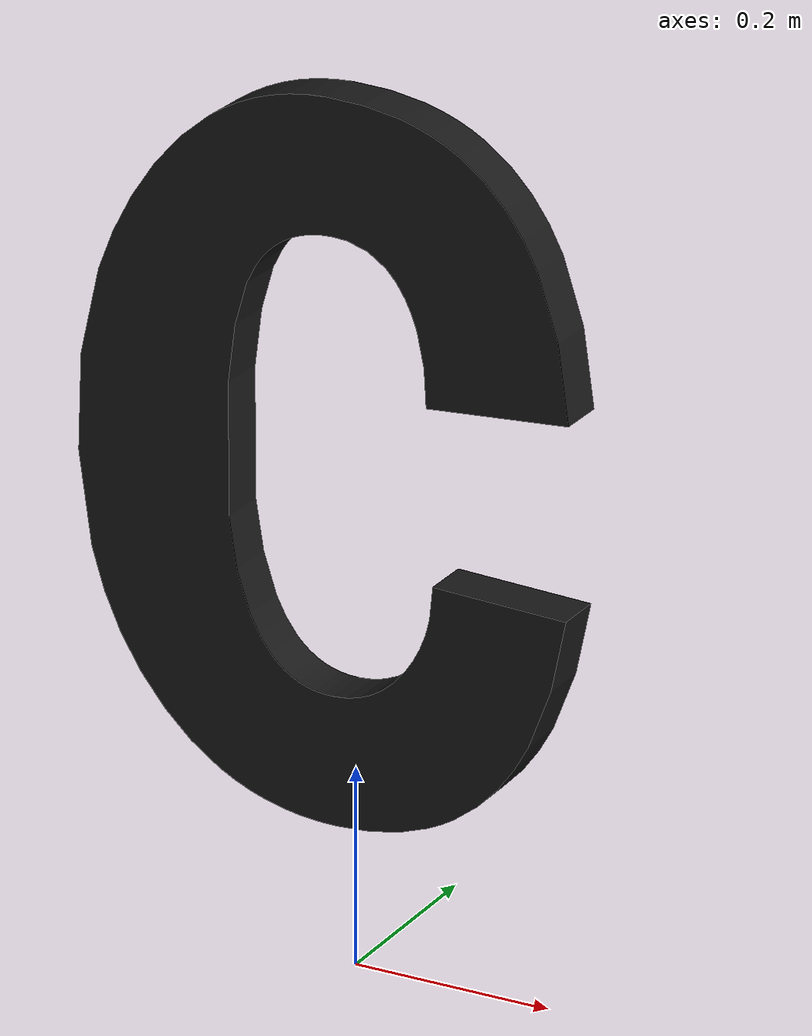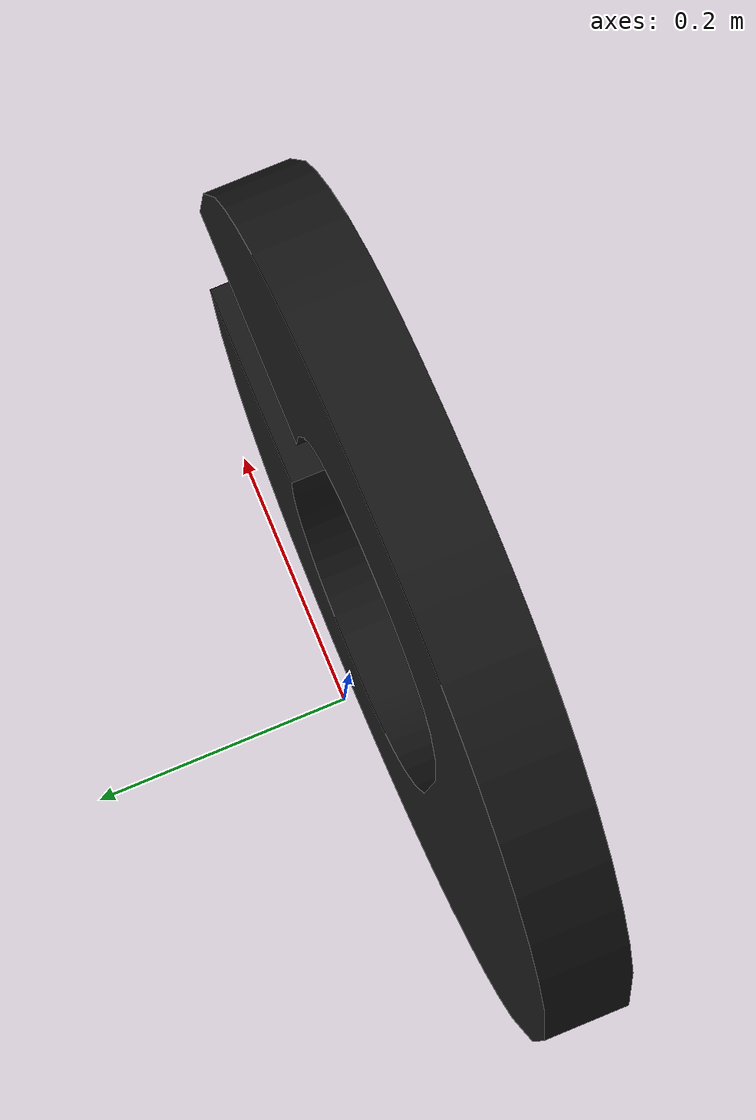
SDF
<?xml version="1.0"?>
<sdf version="1.9">
  <model name="Letter C">
    <static>true</static>
    <link name="link">
      <collision name="collision">
        <geometry>
          <mesh>
            <scale>1 1 1</scale>
            <uri>model://Circuito/Letter C/meshes/letter_C.stl</uri>
          </mesh>
        </geometry>
      </collision>
      <visual name="letter">
        <geometry>
          <mesh>
            <scale>1 1 1</scale>
            <uri>model://Circuito/Letter C/meshes/letter_C.stl</uri>
          </mesh>
        </geometry>
        <material>
          <ambient>0.1 0.1 0.1 1</ambient>
          <diffuse>0.1 0.1 0.1 1</diffuse>
          <specular>1.0 1.0 1.0 1</specular>
        </material>
      </visual>
    </link>
  </model>
</sdf>
